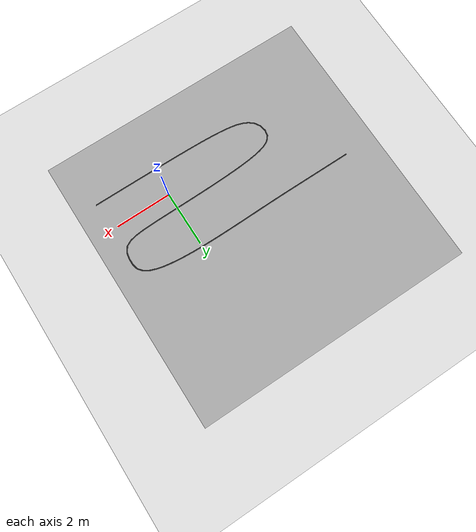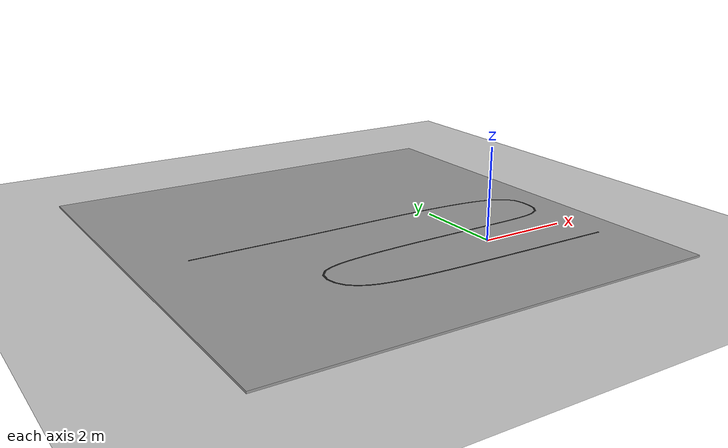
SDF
<sdf version="1.7">
 <world name="default">
  <light name="sun" type="directional">
   <pose>0 0 10 0 -0 0</pose>
   <diffuse>0.8 0.8 0.8 1</diffuse>
   <specular>0.2 0.2 0.2 1</specular>
   <attenuation>
    <range>1000</range>
    <constant>0.9</constant>
    <linear>0.01</linear>
    <quadratic>0.001</quadratic>
   </attenuation>
   <direction>-0.5 0.1 -0.9</direction>
   <spot><inner_angle>0</inner_angle><outer_angle>0</outer_angle><falloff>0</falloff></spot>
  </light>
  <model name="ground_plane">
   <static>1</static>
   <link name="link">
    <collision name="collision">
     <geometry><plane><normal>0 0 1</normal><size>100 100</size></plane></geometry>
     <surface><friction><ode><mu>100</mu><mu2>50</mu2></ode></friction></surface>
    </collision>
    <visual name="visual">
     <cast_shadows>0</cast_shadows>
     <geometry><plane><normal>0 0 1</normal><size>100 100</size></plane></geometry>
     <material>
      <script><uri>file://media/materials/scripts/gazebo.material</uri><name>Gazebo/Grey</name></script>
     </material>
    </visual>
   </link>
  </model>
  <gravity>0 0 -9.8</gravity>
  <magnetic_field>6e-06 2.3e-05 -4.2e-05</magnetic_field>
  <atmosphere type="adiabatic"/>
  <physics type="ode">
   <max_step_size>0.001</max_step_size>
   <real_time_factor>1</real_time_factor>
   <real_time_update_rate>1000</real_time_update_rate>
  </physics>
  <scene><ambient>0.4 0.4 0.4 1</ambient><background>0.7 0.7 0.7 1</background><shadows>1</shadows></scene>
  <audio><device>default</device></audio>
  <spherical_coordinates>
   <surface_model>EARTH_WGS84</surface_model>
   <latitude_deg>0</latitude_deg>
   <longitude_deg>0</longitude_deg>
   <elevation>0</elevation>
   <heading_deg>0</heading_deg>
  </spherical_coordinates>
  <model name="line_track">
   <link name="link_0">
    <inertial>
     <mass>1</mass>
     <inertia>
      <ixx>0.166667</ixx>
      <ixy>0</ixy>
      <ixz>0</ixz>
      <iyy>0.166667</iyy>
      <iyz>0</iyz>
      <izz>0.166667</izz>
     </inertia>
    </inertial>
    <pose>0.848639 -0.049037 0 0 -0 0</pose>
    <visual name="visual">
     <geometry>
      <mesh>
       <uri>/home/kushal16/rse_ws1/robotics_software_engineer/module_5_assignment/models/meshes/base.dae</uri>
       <scale>1 1 1</scale>
      </mesh>
     </geometry>
     <material>
      <lighting>1</lighting>
      <script><uri>file://media/materials/scripts/gazebo.material</uri><name>Gazebo/Grey</name></script>
      <shader type="pixel"/>
      <emissive>0 0 0 1</emissive>
     </material>
    </visual>
    <collision name="collision">
     <geometry>
      <mesh>
       <uri>/home/kushal16/rse_ws1/robotics_software_engineer/module_5_assignment/models/meshes/base.dae</uri>
       <scale>1 1 1</scale>
      </mesh>
     </geometry>
     <surface>
      <friction>
       <ode><mu>1</mu><mu2>1</mu2><fdir1>0 0 0</fdir1><slip1>0</slip1><slip2>0</slip2></ode>
       <torsional>
        <coefficient>1</coefficient>
        <patch_radius>0</patch_radius>
        <surface_radius>0</surface_radius>
        <use_patch_radius>1</use_patch_radius>
        <ode><slip>0</slip></ode>
       </torsional>
      </friction>
      <bounce><restitution_coefficient>0</restitution_coefficient><threshold>1e+06</threshold></bounce>
      <contact>
       <collide_without_contact>0</collide_without_contact>
       <collide_without_contact_bitmask>1</collide_without_contact_bitmask>
       <collide_bitmask>1</collide_bitmask>
       <ode>
        <soft_cfm>0</soft_cfm>
        <soft_erp>0.2</soft_erp>
        <kp>1e+13</kp>
        <kd>1</kd>
        <max_vel>0.01</max_vel>
        <min_depth>0</min_depth>
       </ode>
       <bullet>
        <split_impulse>1</split_impulse>
        <split_impulse_penetration_threshold>-0.01</split_impulse_penetration_threshold>
        <soft_cfm>0</soft_cfm>
        <soft_erp>0.2</soft_erp>
        <kp>1e+13</kp>
        <kd>1</kd>
       </bullet>
      </contact>
     </surface>
    </collision>
   </link>
   <link name="link_1">
    <inertial>
     <mass>1</mass>
     <inertia>
      <ixx>0.166667</ixx>
      <ixy>0</ixy>
      <ixz>0</ixz>
      <iyy>0.166667</iyy>
      <iyz>0</iyz>
      <izz>0.166667</izz>
     </inertia>
    </inertial>
    <pose>-0.848635 0.049036 0.001 0 -0 0</pose>
    <visual name="visual">
     <geometry>
      <mesh>
       <uri>/home/kushal16/rse_ws1/robotics_software_engineer/module_5_assignment/models/meshes/line.dae</uri>
       <scale>1 1 1</scale>
      </mesh>
     </geometry>
     <material>
      <lighting>1</lighting>
      <script><uri>file://media/materials/scripts/gazebo.material</uri><name>Gazebo/Black</name></script>
      <shader type="pixel"/>
      <emissive>0 0 0 1</emissive>
     </material>
    </visual>
    <collision name="collision">
     <geometry>
      <mesh>
       <uri>/home/kushal16/rse_ws1/robotics_software_engineer/module_5_assignment/models/meshes/line.dae</uri>
       <scale>1 1 1</scale>
      </mesh>
     </geometry>
     <surface>
      <friction>
       <ode><mu>1</mu><mu2>1</mu2><fdir1>0 0 0</fdir1><slip1>0</slip1><slip2>0</slip2></ode>
       <torsional>
        <coefficient>1</coefficient>
        <patch_radius>0</patch_radius>
        <surface_radius>0</surface_radius>
        <use_patch_radius>1</use_patch_radius>
        <ode><slip>0</slip></ode>
       </torsional>
      </friction>
      <bounce><restitution_coefficient>0</restitution_coefficient><threshold>1e+06</threshold></bounce>
      <contact>
       <collide_without_contact>0</collide_without_contact>
       <collide_without_contact_bitmask>1</collide_without_contact_bitmask>
       <collide_bitmask>1</collide_bitmask>
       <ode>
        <soft_cfm>0</soft_cfm>
        <soft_erp>0.2</soft_erp>
        <kp>1e+13</kp>
        <kd>1</kd>
        <max_vel>0.01</max_vel>
        <min_depth>0</min_depth>
       </ode>
       <bullet>
        <split_impulse>1</split_impulse>
        <split_impulse_penetration_threshold>-0.01</split_impulse_penetration_threshold>
        <soft_cfm>0</soft_cfm>
        <soft_erp>0.2</soft_erp>
        <kp>1e+13</kp>
        <kd>1</kd>
       </bullet>
      </contact>
     </surface>
    </collision>
   </link>
   <joint name="link_0_JOINT_0" type="fixed">
    <parent>link_0</parent>
    <child>link_1</child>
    <physics>
     <ode><limit><cfm>0</cfm><erp>0.2</erp></limit><suspension><cfm>0</cfm><erp>0.2</erp></suspension></ode>
    </physics>
   </joint>
   <static>1</static>
   <pose>-2.86298 2.05919 0 0 -0 0</pose>
  </model>
 </world>
</sdf>
